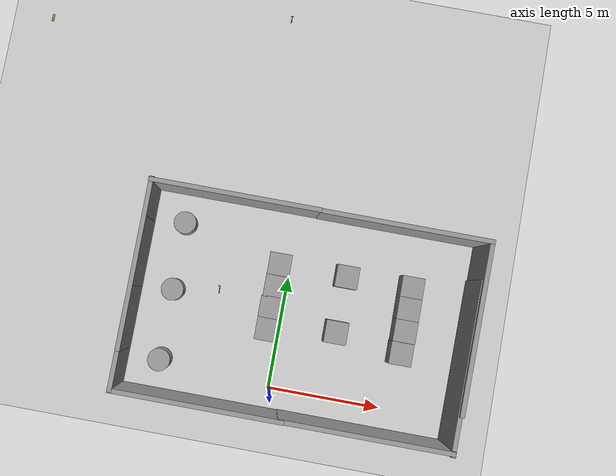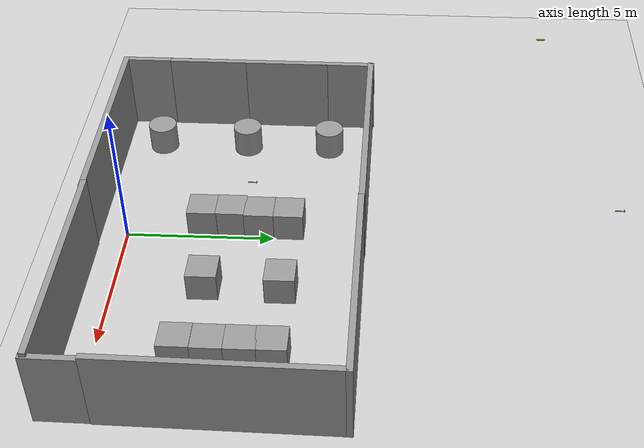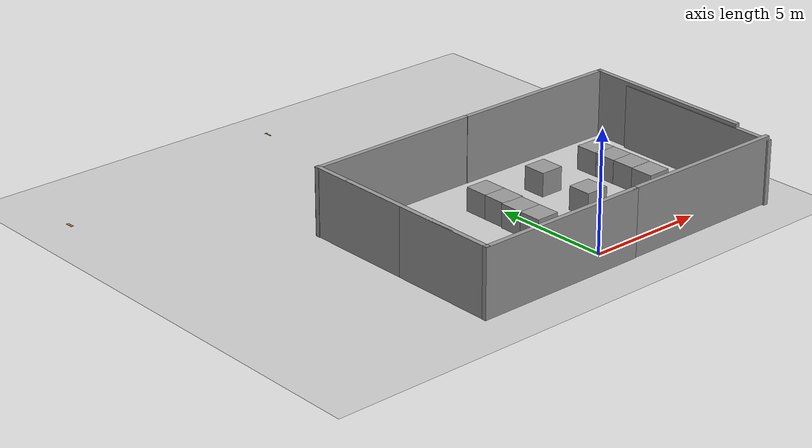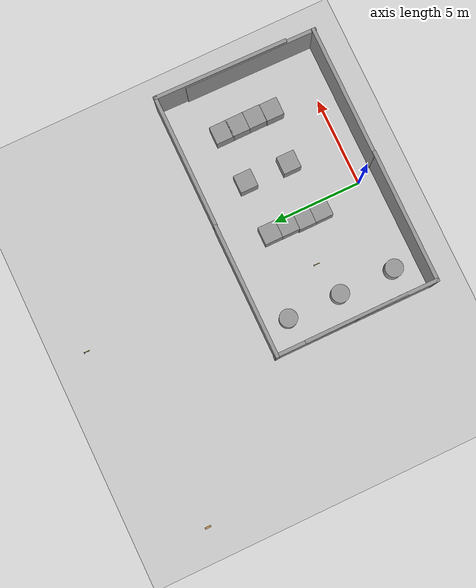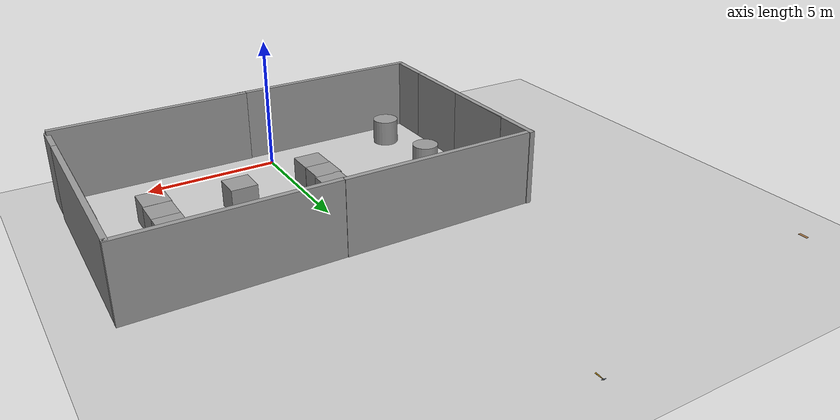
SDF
<sdf version="1.6">
 <world name="default">
  <light name="sun" type="directional">
   <pose>0 0 10 0 -0 0</pose>
   <diffuse>0.8 0.8 0.8 1</diffuse>
   <specular>0.1 0.1 0.1 1</specular>
   <attenuation>
    <range>1000</range>
    <constant>0.9</constant>
    <linear>0.01</linear>
    <quadratic>0.001</quadratic>
   </attenuation>
   <direction>-0.5 0.5 -1</direction>
  </light>
  <model name="ground_plane">
   <static>1</static>
   <link name="link">
    <collision name="collision">
     <geometry><plane><normal>0 0 1</normal><size>100 100</size></plane></geometry>
     <surface><friction><ode><mu>100</mu><mu2>50</mu2></ode></friction></surface>
    </collision>
    <visual name="visual">
     <cast_shadows>0</cast_shadows>
     <geometry><plane><normal>0 0 1</normal><size>100 100</size></plane></geometry>
     <material>
      <script><uri>file://media/materials/scripts/gazebo.material</uri><name>Gazebo/Grey</name></script>
     </material>
    </visual>
   </link>
  </model>
  <gravity>0 0 -9.8</gravity>
  <magnetic_field>6e-06 2.3e-05 -4.2e-05</magnetic_field>
  <atmosphere type="adiabatic"/>
  <physics name="default_physics" default="0" type="ode">
   <max_step_size>0.001</max_step_size>
   <real_time_factor>1</real_time_factor>
   <real_time_update_rate>1000</real_time_update_rate>
  </physics>
  <scene><ambient>0.4 0.4 0.4 1</ambient><background>0.7 0.7 0.7 1</background><shadows>1</shadows></scene>
  <spherical_coordinates>
   <surface_model>EARTH_WGS84</surface_model>
   <latitude_deg>0</latitude_deg>
   <longitude_deg>0</longitude_deg>
   <elevation>0</elevation>
   <heading_deg>0</heading_deg>
  </spherical_coordinates>
  <model name="Untitled4">
   <link name="link_1">
    <pose>5.56368 0.715031 0.235386 0 -0 0</pose>
    <inertial>
     <mass>1</mass>
     <inertia>
      <ixx>0.166667</ixx>
      <ixy>0</ixy>
      <ixz>0</ixz>
      <iyy>0.166667</iyy>
      <iyz>0</iyz>
      <izz>0.166667</izz>
     </inertia>
    </inertial>
    <visual name="visual">
     <geometry><box><size>1 1 1</size></box></geometry>
     <material>
      <lighting>1</lighting>
      <script><uri>file://media/materials/scripts/gazebo.material</uri><name>Gazebo/Grey</name></script>
      <ambient>0.3 0.3 0.3 1</ambient>
      <diffuse>0.7 0.7 0.7 1</diffuse>
      <specular>0.01 0.01 0.01 1</specular>
      <emissive>0 0 0 1</emissive>
     </material>
    </visual>
    <collision name="collision">
     <geometry><box><size>1 1 1</size></box></geometry>
     <surface>
      <friction>
       <ode><mu>1</mu><mu2>1</mu2><fdir1>0 0 0</fdir1><slip1>0</slip1><slip2>0</slip2></ode>
       <torsional>
        <coefficient>1</coefficient>
        <patch_radius>0</patch_radius>
        <surface_radius>0</surface_radius>
        <use_patch_radius>1</use_patch_radius>
        <ode><slip>0</slip></ode>
       </torsional>
      </friction>
      <bounce><restitution_coefficient>0</restitution_coefficient><threshold>1e+06</threshold></bounce>
      <contact>
       <collide_without_contact>0</collide_without_contact>
       <collide_without_contact_bitmask>1</collide_without_contact_bitmask>
       <collide_bitmask>1</collide_bitmask>
       <ode>
        <soft_cfm>0</soft_cfm>
        <soft_erp>0.2</soft_erp>
        <kp>1e+13</kp>
        <kd>1</kd>
        <max_vel>0.01</max_vel>
        <min_depth>0</min_depth>
       </ode>
       <bullet>
        <split_impulse>1</split_impulse>
        <split_impulse_penetration_threshold>-0.01</split_impulse_penetration_threshold>
        <soft_cfm>0</soft_cfm>
        <soft_erp>0.2</soft_erp>
        <kp>1e+13</kp>
        <kd>1</kd>
       </bullet>
      </contact>
     </surface>
    </collision>
   </link>
   <link name="link_2">
    <pose>5.5694 -0.224782 0.235386 0 -0 0</pose>
    <inertial>
     <mass>1</mass>
     <inertia>
      <ixx>0.166667</ixx>
      <ixy>0</ixy>
      <ixz>0</ixz>
      <iyy>0.166667</iyy>
      <iyz>0</iyz>
      <izz>0.166667</izz>
     </inertia>
    </inertial>
    <visual name="visual">
     <geometry><box><size>1 1 1</size></box></geometry>
     <material>
      <lighting>1</lighting>
      <script><uri>file://media/materials/scripts/gazebo.material</uri><name>Gazebo/Grey</name></script>
      <ambient>0.3 0.3 0.3 1</ambient>
      <diffuse>0.7 0.7 0.7 1</diffuse>
      <specular>0.01 0.01 0.01 1</specular>
      <emissive>0 0 0 1</emissive>
     </material>
    </visual>
    <collision name="collision">
     <geometry><box><size>1 1 1</size></box></geometry>
     <surface>
      <friction>
       <ode><mu>1</mu><mu2>1</mu2><fdir1>0 0 0</fdir1><slip1>0</slip1><slip2>0</slip2></ode>
       <torsional>
        <coefficient>1</coefficient>
        <patch_radius>0</patch_radius>
        <surface_radius>0</surface_radius>
        <use_patch_radius>1</use_patch_radius>
        <ode><slip>0</slip></ode>
       </torsional>
      </friction>
      <bounce><restitution_coefficient>0</restitution_coefficient><threshold>1e+06</threshold></bounce>
      <contact>
       <collide_without_contact>0</collide_without_contact>
       <collide_without_contact_bitmask>1</collide_without_contact_bitmask>
       <collide_bitmask>1</collide_bitmask>
       <ode>
        <soft_cfm>0</soft_cfm>
        <soft_erp>0.2</soft_erp>
        <kp>1e+13</kp>
        <kd>1</kd>
        <max_vel>0.01</max_vel>
        <min_depth>0</min_depth>
       </ode>
       <bullet>
        <split_impulse>1</split_impulse>
        <split_impulse_penetration_threshold>-0.01</split_impulse_penetration_threshold>
        <soft_cfm>0</soft_cfm>
        <soft_erp>0.2</soft_erp>
        <kp>1e+13</kp>
        <kd>1</kd>
       </bullet>
      </contact>
     </surface>
    </collision>
   </link>
   <link name="link_3">
    <pose>5.57303 -1.21739 0.235386 0 -0 0</pose>
    <inertial>
     <mass>1</mass>
     <inertia>
      <ixx>0.166667</ixx>
      <ixy>0</ixy>
      <ixz>0</ixz>
      <iyy>0.166667</iyy>
      <iyz>0</iyz>
      <izz>0.166667</izz>
     </inertia>
    </inertial>
    <visual name="visual">
     <geometry><box><size>1 1 1</size></box></geometry>
     <material>
      <lighting>1</lighting>
      <script><uri>file://media/materials/scripts/gazebo.material</uri><name>Gazebo/Grey</name></script>
      <ambient>0.3 0.3 0.3 1</ambient>
      <diffuse>0.7 0.7 0.7 1</diffuse>
      <specular>0.01 0.01 0.01 1</specular>
      <emissive>0 0 0 1</emissive>
     </material>
    </visual>
    <collision name="collision">
     <geometry><box><size>1 1 1</size></box></geometry>
     <surface>
      <friction>
       <ode><mu>1</mu><mu2>1</mu2><fdir1>0 0 0</fdir1><slip1>0</slip1><slip2>0</slip2></ode>
       <torsional>
        <coefficient>1</coefficient>
        <patch_radius>0</patch_radius>
        <surface_radius>0</surface_radius>
        <use_patch_radius>1</use_patch_radius>
        <ode><slip>0</slip></ode>
       </torsional>
      </friction>
      <bounce><restitution_coefficient>0</restitution_coefficient><threshold>1e+06</threshold></bounce>
      <contact>
       <collide_without_contact>0</collide_without_contact>
       <collide_without_contact_bitmask>1</collide_without_contact_bitmask>
       <collide_bitmask>1</collide_bitmask>
       <ode>
        <soft_cfm>0</soft_cfm>
        <soft_erp>0.2</soft_erp>
        <kp>1e+13</kp>
        <kd>1</kd>
        <max_vel>0.01</max_vel>
        <min_depth>0</min_depth>
       </ode>
       <bullet>
        <split_impulse>1</split_impulse>
        <split_impulse_penetration_threshold>-0.01</split_impulse_penetration_threshold>
        <soft_cfm>0</soft_cfm>
        <soft_erp>0.2</soft_erp>
        <kp>1e+13</kp>
        <kd>1</kd>
       </bullet>
      </contact>
     </surface>
    </collision>
   </link>
   <link name="link_4">
    <pose>5.55395 -2.22258 0.235386 0 -0 0</pose>
    <inertial>
     <mass>1</mass>
     <inertia>
      <ixx>0.166667</ixx>
      <ixy>0</ixy>
      <ixz>0</ixz>
      <iyy>0.166667</iyy>
      <iyz>0</iyz>
      <izz>0.166667</izz>
     </inertia>
    </inertial>
    <visual name="visual">
     <geometry><box><size>1 1 1</size></box></geometry>
     <material>
      <lighting>1</lighting>
      <script><uri>file://media/materials/scripts/gazebo.material</uri><name>Gazebo/Grey</name></script>
      <ambient>0.3 0.3 0.3 1</ambient>
      <diffuse>0.7 0.7 0.7 1</diffuse>
      <specular>0.01 0.01 0.01 1</specular>
      <emissive>0 0 0 1</emissive>
     </material>
    </visual>
    <collision name="collision">
     <geometry><box><size>1 1 1</size></box></geometry>
     <surface>
      <friction>
       <ode><mu>1</mu><mu2>1</mu2><fdir1>0 0 0</fdir1><slip1>0</slip1><slip2>0</slip2></ode>
       <torsional>
        <coefficient>1</coefficient>
        <patch_radius>0</patch_radius>
        <surface_radius>0</surface_radius>
        <use_patch_radius>1</use_patch_radius>
        <ode><slip>0</slip></ode>
       </torsional>
      </friction>
      <bounce><restitution_coefficient>0</restitution_coefficient><threshold>1e+06</threshold></bounce>
      <contact>
       <collide_without_contact>0</collide_without_contact>
       <collide_without_contact_bitmask>1</collide_without_contact_bitmask>
       <collide_bitmask>1</collide_bitmask>
       <ode>
        <soft_cfm>0</soft_cfm>
        <soft_erp>0.2</soft_erp>
        <kp>1e+13</kp>
        <kd>1</kd>
        <max_vel>0.01</max_vel>
        <min_depth>0</min_depth>
       </ode>
       <bullet>
        <split_impulse>1</split_impulse>
        <split_impulse_penetration_threshold>-0.01</split_impulse_penetration_threshold>
        <soft_cfm>0</soft_cfm>
        <soft_erp>0.2</soft_erp>
        <kp>1e+13</kp>
        <kd>1</kd>
       </bullet>
      </contact>
     </surface>
    </collision>
   </link>
   <link name="link_4_clone">
    <pose>-0.408609 0.691981 0.235386 0 -0 0</pose>
    <inertial>
     <mass>1</mass>
     <inertia>
      <ixx>0.166667</ixx>
      <ixy>0</ixy>
      <ixz>0</ixz>
      <iyy>0.166667</iyy>
      <iyz>0</iyz>
      <izz>0.166667</izz>
     </inertia>
    </inertial>
    <visual name="visual">
     <geometry><box><size>1 1 1</size></box></geometry>
     <material>
      <lighting>1</lighting>
      <script><uri>file://media/materials/scripts/gazebo.material</uri><name>Gazebo/Grey</name></script>
      <ambient>0.3 0.3 0.3 1</ambient>
      <diffuse>0.7 0.7 0.7 1</diffuse>
      <specular>0.01 0.01 0.01 1</specular>
      <emissive>0 0 0 1</emissive>
      <shader type="pixel"/>
     </material>
    </visual>
    <collision name="collision">
     <geometry><box><size>1 1 1</size></box></geometry>
     <surface>
      <friction>
       <ode><mu>1</mu><mu2>1</mu2><fdir1>0 0 0</fdir1><slip1>0</slip1><slip2>0</slip2></ode>
       <torsional>
        <coefficient>1</coefficient>
        <patch_radius>0</patch_radius>
        <surface_radius>0</surface_radius>
        <use_patch_radius>1</use_patch_radius>
        <ode><slip>0</slip></ode>
       </torsional>
      </friction>
      <bounce><restitution_coefficient>0</restitution_coefficient><threshold>1e+06</threshold></bounce>
      <contact>
       <collide_without_contact>0</collide_without_contact>
       <collide_without_contact_bitmask>1</collide_without_contact_bitmask>
       <collide_bitmask>1</collide_bitmask>
       <ode>
        <soft_cfm>0</soft_cfm>
        <soft_erp>0.2</soft_erp>
        <kp>1e+13</kp>
        <kd>1</kd>
        <max_vel>0.01</max_vel>
        <min_depth>0</min_depth>
       </ode>
       <bullet>
        <split_impulse>1</split_impulse>
        <split_impulse_penetration_threshold>-0.01</split_impulse_penetration_threshold>
        <soft_cfm>0</soft_cfm>
        <soft_erp>0.2</soft_erp>
        <kp>1e+13</kp>
        <kd>1</kd>
       </bullet>
      </contact>
     </surface>
    </collision>
   </link>
   <link name="link_4_clone_0">
    <pose>-0.412688 -0.309365 0.235386 0 -0 0</pose>
    <inertial>
     <mass>1</mass>
     <inertia>
      <ixx>0.166667</ixx>
      <ixy>0</ixy>
      <ixz>0</ixz>
      <iyy>0.166667</iyy>
      <iyz>0</iyz>
      <izz>0.166667</izz>
     </inertia>
    </inertial>
    <visual name="visual">
     <geometry><box><size>1 1 1</size></box></geometry>
     <material>
      <lighting>1</lighting>
      <script><uri>file://media/materials/scripts/gazebo.material</uri><name>Gazebo/Grey</name></script>
      <ambient>0.3 0.3 0.3 1</ambient>
      <diffuse>0.7 0.7 0.7 1</diffuse>
      <specular>0.01 0.01 0.01 1</specular>
      <emissive>0 0 0 1</emissive>
      <shader type="pixel"/>
     </material>
    </visual>
    <collision name="collision">
     <geometry><box><size>1 1 1</size></box></geometry>
     <surface>
      <friction>
       <ode><mu>1</mu><mu2>1</mu2><fdir1>0 0 0</fdir1><slip1>0</slip1><slip2>0</slip2></ode>
       <torsional>
        <coefficient>1</coefficient>
        <patch_radius>0</patch_radius>
        <surface_radius>0</surface_radius>
        <use_patch_radius>1</use_patch_radius>
        <ode><slip>0</slip></ode>
       </torsional>
      </friction>
      <bounce><restitution_coefficient>0</restitution_coefficient><threshold>1e+06</threshold></bounce>
      <contact>
       <collide_without_contact>0</collide_without_contact>
       <collide_without_contact_bitmask>1</collide_without_contact_bitmask>
       <collide_bitmask>1</collide_bitmask>
       <ode>
        <soft_cfm>0</soft_cfm>
        <soft_erp>0.2</soft_erp>
        <kp>1e+13</kp>
        <kd>1</kd>
        <max_vel>0.01</max_vel>
        <min_depth>0</min_depth>
       </ode>
       <bullet>
        <split_impulse>1</split_impulse>
        <split_impulse_penetration_threshold>-0.01</split_impulse_penetration_threshold>
        <soft_cfm>0</soft_cfm>
        <soft_erp>0.2</soft_erp>
        <kp>1e+13</kp>
        <kd>1</kd>
       </bullet>
      </contact>
     </surface>
    </collision>
   </link>
   <link name="link_4_clone_1">
    <pose>-0.466323 -1.27048 0.235386 0 -0 0</pose>
    <inertial>
     <mass>1</mass>
     <inertia>
      <ixx>0.166667</ixx>
      <ixy>0</ixy>
      <ixz>0</ixz>
      <iyy>0.166667</iyy>
      <iyz>0</iyz>
      <izz>0.166667</izz>
     </inertia>
    </inertial>
    <visual name="visual">
     <geometry><box><size>1 1 1</size></box></geometry>
     <material>
      <lighting>1</lighting>
      <script><uri>file://media/materials/scripts/gazebo.material</uri><name>Gazebo/Grey</name></script>
      <ambient>0.3 0.3 0.3 1</ambient>
      <diffuse>0.7 0.7 0.7 1</diffuse>
      <specular>0.01 0.01 0.01 1</specular>
      <emissive>0 0 0 1</emissive>
      <shader type="pixel"/>
     </material>
    </visual>
    <collision name="collision">
     <geometry><box><size>1 1 1</size></box></geometry>
     <surface>
      <friction>
       <ode><mu>1</mu><mu2>1</mu2><fdir1>0 0 0</fdir1><slip1>0</slip1><slip2>0</slip2></ode>
       <torsional>
        <coefficient>1</coefficient>
        <patch_radius>0</patch_radius>
        <surface_radius>0</surface_radius>
        <use_patch_radius>1</use_patch_radius>
        <ode><slip>0</slip></ode>
       </torsional>
      </friction>
      <bounce><restitution_coefficient>0</restitution_coefficient><threshold>1e+06</threshold></bounce>
      <contact>
       <collide_without_contact>0</collide_without_contact>
       <collide_without_contact_bitmask>1</collide_without_contact_bitmask>
       <collide_bitmask>1</collide_bitmask>
       <ode>
        <soft_cfm>0</soft_cfm>
        <soft_erp>0.2</soft_erp>
        <kp>1e+13</kp>
        <kd>1</kd>
        <max_vel>0.01</max_vel>
        <min_depth>0</min_depth>
       </ode>
       <bullet>
        <split_impulse>1</split_impulse>
        <split_impulse_penetration_threshold>-0.01</split_impulse_penetration_threshold>
        <soft_cfm>0</soft_cfm>
        <soft_erp>0.2</soft_erp>
        <kp>1e+13</kp>
        <kd>1</kd>
       </bullet>
      </contact>
     </surface>
    </collision>
   </link>
   <link name="link_4_clone_2">
    <pose>-0.458533 -2.23347 0.235386 0 -0 0</pose>
    <inertial>
     <mass>1</mass>
     <inertia>
      <ixx>0.166667</ixx>
      <ixy>0</ixy>
      <ixz>0</ixz>
      <iyy>0.166667</iyy>
      <iyz>0</iyz>
      <izz>0.166667</izz>
     </inertia>
    </inertial>
    <visual name="visual">
     <geometry><box><size>1 1 1</size></box></geometry>
     <material>
      <lighting>1</lighting>
      <script><uri>file://media/materials/scripts/gazebo.material</uri><name>Gazebo/Grey</name></script>
      <ambient>0.3 0.3 0.3 1</ambient>
      <diffuse>0.7 0.7 0.7 1</diffuse>
      <specular>0.01 0.01 0.01 1</specular>
      <emissive>0 0 0 1</emissive>
      <shader type="pixel"/>
     </material>
    </visual>
    <collision name="collision">
     <geometry><box><size>1 1 1</size></box></geometry>
     <surface>
      <friction>
       <ode><mu>1</mu><mu2>1</mu2><fdir1>0 0 0</fdir1><slip1>0</slip1><slip2>0</slip2></ode>
       <torsional>
        <coefficient>1</coefficient>
        <patch_radius>0</patch_radius>
        <surface_radius>0</surface_radius>
        <use_patch_radius>1</use_patch_radius>
        <ode><slip>0</slip></ode>
       </torsional>
      </friction>
      <bounce><restitution_coefficient>0</restitution_coefficient><threshold>1e+06</threshold></bounce>
      <contact>
       <collide_without_contact>0</collide_without_contact>
       <collide_without_contact_bitmask>1</collide_without_contact_bitmask>
       <collide_bitmask>1</collide_bitmask>
       <ode>
        <soft_cfm>0</soft_cfm>
        <soft_erp>0.2</soft_erp>
        <kp>1e+13</kp>
        <kd>1</kd>
        <max_vel>0.01</max_vel>
        <min_depth>0</min_depth>
       </ode>
       <bullet>
        <split_impulse>1</split_impulse>
        <split_impulse_penetration_threshold>-0.01</split_impulse_penetration_threshold>
        <soft_cfm>0</soft_cfm>
        <soft_erp>0.2</soft_erp>
        <kp>1e+13</kp>
        <kd>1</kd>
       </bullet>
      </contact>
     </surface>
    </collision>
   </link>
   <link name="link_5">
    <pose>-4.90021 -4.3868 0.235386 0 -0 0</pose>
    <inertial>
     <mass>1</mass>
     <inertia><ixx>0.145833</ixx><ixy>0</ixy><ixz>0</ixz><iyy>0.145833</iyy><iyz>0</iyz><izz>0.125</izz></inertia>
    </inertial>
    <visual name="visual">
     <geometry><cylinder><radius>0.5</radius><length>1</length></cylinder></geometry>
     <material>
      <lighting>1</lighting>
      <script><uri>file://media/materials/scripts/gazebo.material</uri><name>Gazebo/Grey</name></script>
      <ambient>0.3 0.3 0.3 1</ambient>
      <diffuse>0.7 0.7 0.7 1</diffuse>
      <specular>0.01 0.01 0.01 1</specular>
      <emissive>0 0 0 1</emissive>
     </material>
    </visual>
    <collision name="collision">
     <geometry><cylinder><radius>0.5</radius><length>1</length></cylinder></geometry>
     <surface>
      <friction>
       <ode><mu>1</mu><mu2>1</mu2><fdir1>0 0 0</fdir1><slip1>0</slip1><slip2>0</slip2></ode>
       <torsional>
        <coefficient>1</coefficient>
        <patch_radius>0</patch_radius>
        <surface_radius>0</surface_radius>
        <use_patch_radius>1</use_patch_radius>
        <ode><slip>0</slip></ode>
       </torsional>
      </friction>
      <bounce><restitution_coefficient>0</restitution_coefficient><threshold>1e+06</threshold></bounce>
      <contact>
       <collide_without_contact>0</collide_without_contact>
       <collide_without_contact_bitmask>1</collide_without_contact_bitmask>
       <collide_bitmask>1</collide_bitmask>
       <ode>
        <soft_cfm>0</soft_cfm>
        <soft_erp>0.2</soft_erp>
        <kp>1e+13</kp>
        <kd>1</kd>
        <max_vel>0.01</max_vel>
        <min_depth>0</min_depth>
       </ode>
       <bullet>
        <split_impulse>1</split_impulse>
        <split_impulse_penetration_threshold>-0.01</split_impulse_penetration_threshold>
        <soft_cfm>0</soft_cfm>
        <soft_erp>0.2</soft_erp>
        <kp>1e+13</kp>
        <kd>1</kd>
       </bullet>
      </contact>
     </surface>
    </collision>
   </link>
   <link name="link_6">
    <pose>-4.90021 -1.24553 0.235386 0 -0 0</pose>
    <inertial>
     <mass>1</mass>
     <inertia><ixx>0.145833</ixx><ixy>0</ixy><ixz>0</ixz><iyy>0.145833</iyy><iyz>0</iyz><izz>0.125</izz></inertia>
    </inertial>
    <visual name="visual">
     <geometry><cylinder><radius>0.5</radius><length>1</length></cylinder></geometry>
     <material>
      <lighting>1</lighting>
      <script><uri>file://media/materials/scripts/gazebo.material</uri><name>Gazebo/Grey</name></script>
      <ambient>0.3 0.3 0.3 1</ambient>
      <diffuse>0.7 0.7 0.7 1</diffuse>
      <specular>0.01 0.01 0.01 1</specular>
      <emissive>0 0 0 1</emissive>
     </material>
    </visual>
    <collision name="collision">
     <geometry><cylinder><radius>0.5</radius><length>1</length></cylinder></geometry>
     <surface>
      <friction>
       <ode><mu>1</mu><mu2>1</mu2><fdir1>0 0 0</fdir1><slip1>0</slip1><slip2>0</slip2></ode>
       <torsional>
        <coefficient>1</coefficient>
        <patch_radius>0</patch_radius>
        <surface_radius>0</surface_radius>
        <use_patch_radius>1</use_patch_radius>
        <ode><slip>0</slip></ode>
       </torsional>
      </friction>
      <bounce><restitution_coefficient>0</restitution_coefficient><threshold>1e+06</threshold></bounce>
      <contact>
       <collide_without_contact>0</collide_without_contact>
       <collide_without_contact_bitmask>1</collide_without_contact_bitmask>
       <collide_bitmask>1</collide_bitmask>
       <ode>
        <soft_cfm>0</soft_cfm>
        <soft_erp>0.2</soft_erp>
        <kp>1e+13</kp>
        <kd>1</kd>
        <max_vel>0.01</max_vel>
        <min_depth>0</min_depth>
       </ode>
       <bullet>
        <split_impulse>1</split_impulse>
        <split_impulse_penetration_threshold>-0.01</split_impulse_penetration_threshold>
        <soft_cfm>0</soft_cfm>
        <soft_erp>0.2</soft_erp>
        <kp>1e+13</kp>
        <kd>1</kd>
       </bullet>
      </contact>
     </surface>
    </collision>
   </link>
   <link name="link_7">
    <pose>-4.90021 1.76209 0.235386 0 -0 0</pose>
    <inertial>
     <mass>1</mass>
     <inertia><ixx>0.145833</ixx><ixy>0</ixy><ixz>0</ixz><iyy>0.145833</iyy><iyz>0</iyz><izz>0.125</izz></inertia>
    </inertial>
    <visual name="visual">
     <geometry><cylinder><radius>0.5</radius><length>1</length></cylinder></geometry>
     <material>
      <lighting>1</lighting>
      <script><uri>file://media/materials/scripts/gazebo.material</uri><name>Gazebo/Grey</name></script>
      <ambient>0.3 0.3 0.3 1</ambient>
      <diffuse>0.7 0.7 0.7 1</diffuse>
      <specular>0.01 0.01 0.01 1</specular>
      <emissive>0 0 0 1</emissive>
     </material>
    </visual>
    <collision name="collision">
     <geometry><cylinder><radius>0.5</radius><length>1</length></cylinder></geometry>
     <surface>
      <friction>
       <ode><mu>1</mu><mu2>1</mu2><fdir1>0 0 0</fdir1><slip1>0</slip1><slip2>0</slip2></ode>
       <torsional>
        <coefficient>1</coefficient>
        <patch_radius>0</patch_radius>
        <surface_radius>0</surface_radius>
        <use_patch_radius>1</use_patch_radius>
        <ode><slip>0</slip></ode>
       </torsional>
      </friction>
      <bounce><restitution_coefficient>0</restitution_coefficient><threshold>1e+06</threshold></bounce>
      <contact>
       <collide_without_contact>0</collide_without_contact>
       <collide_without_contact_bitmask>1</collide_without_contact_bitmask>
       <collide_bitmask>1</collide_bitmask>
       <ode>
        <soft_cfm>0</soft_cfm>
        <soft_erp>0.2</soft_erp>
        <kp>1e+13</kp>
        <kd>1</kd>
        <max_vel>0.01</max_vel>
        <min_depth>0</min_depth>
       </ode>
       <bullet>
        <split_impulse>1</split_impulse>
        <split_impulse_penetration_threshold>-0.01</split_impulse_penetration_threshold>
        <soft_cfm>0</soft_cfm>
        <soft_erp>0.2</soft_erp>
        <kp>1e+13</kp>
        <kd>1</kd>
       </bullet>
      </contact>
     </surface>
    </collision>
   </link>
   <link name="link_8">
    <pose>2.57714 -1.81245 0.235386 0 -0 0</pose>
    <inertial>
     <mass>1</mass>
     <inertia>
      <ixx>0.166667</ixx>
      <ixy>0</ixy>
      <ixz>0</ixz>
      <iyy>0.166667</iyy>
      <iyz>0</iyz>
      <izz>0.166667</izz>
     </inertia>
    </inertial>
    <visual name="visual">
     <geometry><box><size>1 1 1</size></box></geometry>
     <material>
      <lighting>1</lighting>
      <script><uri>file://media/materials/scripts/gazebo.material</uri><name>Gazebo/Grey</name></script>
      <ambient>0.3 0.3 0.3 1</ambient>
      <diffuse>0.7 0.7 0.7 1</diffuse>
      <specular>0.01 0.01 0.01 1</specular>
      <emissive>0 0 0 1</emissive>
     </material>
    </visual>
    <collision name="collision">
     <geometry><box><size>1 1 1</size></box></geometry>
     <surface>
      <friction>
       <ode><mu>1</mu><mu2>1</mu2><fdir1>0 0 0</fdir1><slip1>0</slip1><slip2>0</slip2></ode>
       <torsional>
        <coefficient>1</coefficient>
        <patch_radius>0</patch_radius>
        <surface_radius>0</surface_radius>
        <use_patch_radius>1</use_patch_radius>
        <ode><slip>0</slip></ode>
       </torsional>
      </friction>
      <bounce><restitution_coefficient>0</restitution_coefficient><threshold>1e+06</threshold></bounce>
      <contact>
       <collide_without_contact>0</collide_without_contact>
       <collide_without_contact_bitmask>1</collide_without_contact_bitmask>
       <collide_bitmask>1</collide_bitmask>
       <ode>
        <soft_cfm>0</soft_cfm>
        <soft_erp>0.2</soft_erp>
        <kp>1e+13</kp>
        <kd>1</kd>
        <max_vel>0.01</max_vel>
        <min_depth>0</min_depth>
       </ode>
       <bullet>
        <split_impulse>1</split_impulse>
        <split_impulse_penetration_threshold>-0.01</split_impulse_penetration_threshold>
        <soft_cfm>0</soft_cfm>
        <soft_erp>0.2</soft_erp>
        <kp>1e+13</kp>
        <kd>1</kd>
       </bullet>
      </contact>
     </surface>
    </collision>
   </link>
   <link name="link_9">
    <pose>2.6402 0.683528 0.235386 0 -0 0</pose>
    <inertial>
     <mass>1</mass>
     <inertia>
      <ixx>0.166667</ixx>
      <ixy>0</ixy>
      <ixz>0</ixz>
      <iyy>0.166667</iyy>
      <iyz>0</iyz>
      <izz>0.166667</izz>
     </inertia>
    </inertial>
    <visual name="visual">
     <geometry><box><size>1 1 1</size></box></geometry>
     <material>
      <lighting>1</lighting>
      <script><uri>file://media/materials/scripts/gazebo.material</uri><name>Gazebo/Grey</name></script>
      <ambient>0.3 0.3 0.3 1</ambient>
      <diffuse>0.7 0.7 0.7 1</diffuse>
      <specular>0.01 0.01 0.01 1</specular>
      <emissive>0 0 0 1</emissive>
     </material>
    </visual>
    <collision name="collision">
     <geometry><box><size>1 1 1</size></box></geometry>
     <surface>
      <friction>
       <ode><mu>1</mu><mu2>1</mu2><fdir1>0 0 0</fdir1><slip1>0</slip1><slip2>0</slip2></ode>
       <torsional>
        <coefficient>1</coefficient>
        <patch_radius>0</patch_radius>
        <surface_radius>0</surface_radius>
        <use_patch_radius>1</use_patch_radius>
        <ode><slip>0</slip></ode>
       </torsional>
      </friction>
      <bounce><restitution_coefficient>0</restitution_coefficient><threshold>1e+06</threshold></bounce>
      <contact>
       <collide_without_contact>0</collide_without_contact>
       <collide_without_contact_bitmask>1</collide_without_contact_bitmask>
       <collide_bitmask>1</collide_bitmask>
       <ode>
        <soft_cfm>0</soft_cfm>
        <soft_erp>0.2</soft_erp>
        <kp>1e+13</kp>
        <kd>1</kd>
        <max_vel>0.01</max_vel>
        <min_depth>0</min_depth>
       </ode>
       <bullet>
        <split_impulse>1</split_impulse>
        <split_impulse_penetration_threshold>-0.01</split_impulse_penetration_threshold>
        <soft_cfm>0</soft_cfm>
        <soft_erp>0.2</soft_erp>
        <kp>1e+13</kp>
        <kd>1</kd>
       </bullet>
      </contact>
     </surface>
    </collision>
   </link>
   <model name="grey_wall">
    <static>1</static>
    <link name="link">
     <pose>0 0 1.4 0 -0 0</pose>
     <collision name="collision"><geometry><box><size>7.5 0.2 2.8</size></box></geometry></collision>
     <visual name="visual">
      <cast_shadows>0</cast_shadows>
      <geometry><box><size>7.5 0.2 2.8</size></box></geometry>
      <material>
       <script>
        <uri>model://grey_wall/materials/scripts</uri>
        <uri>model://grey_wall/materials/textures</uri>
        <name>vrc/grey_wall</name>
       </script>
      </material>
     </visual>
    </link>
    <pose>-2.84041 -5.81538 -0.264614 0 -0 0</pose>
   </model>
   <model name="grey_wall_0">
    <static>1</static>
    <link name="link">
     <pose>0 0 1.4 0 -0 0</pose>
     <collision name="collision"><geometry><box><size>7.5 0.2 2.8</size></box></geometry></collision>
     <visual name="visual">
      <cast_shadows>0</cast_shadows>
      <geometry><box><size>7.5 0.2 2.8</size></box></geometry>
      <material>
       <script>
        <uri>model://grey_wall/materials/scripts</uri>
        <uri>model://grey_wall/materials/textures</uri>
        <name>vrc/grey_wall</name>
       </script>
      </material>
     </visual>
    </link>
    <pose>4.3684 -5.79147 -0.264614 0 -0 0</pose>
   </model>
   <model name="grey_wall_1">
    <static>1</static>
    <link name="link">
     <pose>0 0 1.4 0 -0 0</pose>
     <collision name="collision"><geometry><box><size>7.5 0.2 2.8</size></box></geometry></collision>
     <visual name="visual">
      <cast_shadows>0</cast_shadows>
      <geometry><box><size>7.5 0.2 2.8</size></box></geometry>
      <material>
       <script>
        <uri>model://grey_wall/materials/scripts</uri>
        <uri>model://grey_wall/materials/textures</uri>
        <name>vrc/grey_wall</name>
       </script>
      </material>
     </visual>
    </link>
    <pose>-2.83368 3.20584 -0.264614 0 -0 0</pose>
   </model>
   <model name="grey_wall_2">
    <static>1</static>
    <link name="link">
     <pose>0 0 1.4 0 -0 0</pose>
     <collision name="collision"><geometry><box><size>7.5 0.2 2.8</size></box></geometry></collision>
     <visual name="visual">
      <cast_shadows>0</cast_shadows>
      <geometry><box><size>7.5 0.2 2.8</size></box></geometry>
      <material>
       <script>
        <uri>model://grey_wall/materials/scripts</uri>
        <uri>model://grey_wall/materials/textures</uri>
        <name>vrc/grey_wall</name>
       </script>
      </material>
     </visual>
    </link>
    <pose>4.60801 3.18755 -0.264614 0 -0 0</pose>
   </model>
   <model name="grey_wall_3">
    <static>1</static>
    <link name="link">
     <pose>0 0 1.4 0 -0 0</pose>
     <collision name="collision"><geometry><box><size>7.5 0.2 2.8</size></box></geometry></collision>
     <visual name="visual">
      <cast_shadows>0</cast_shadows>
      <geometry><box><size>7.5 0.2 2.8</size></box></geometry>
      <material>
       <script>
        <uri>model://grey_wall/materials/scripts</uri>
        <uri>model://grey_wall/materials/textures</uri>
        <name>vrc/grey_wall</name>
       </script>
      </material>
     </visual>
    </link>
    <pose>-6.47363 -2.12792 -0.264614 0 -0 1.56786</pose>
   </model>
   <model name="grey_wall_4">
    <static>1</static>
    <link name="link">
     <pose>0 0 1.4 0 -0 0</pose>
     <collision name="collision"><geometry><box><size>7.5 0.2 2.8</size></box></geometry></collision>
     <visual name="visual">
      <cast_shadows>0</cast_shadows>
      <geometry><box><size>7.5 0.2 2.8</size></box></geometry>
      <material>
       <script>
        <uri>model://grey_wall/materials/scripts</uri>
        <uri>model://grey_wall/materials/textures</uri>
        <name>vrc/grey_wall</name>
       </script>
      </material>
     </visual>
    </link>
    <pose>8.1188 -2.21464 -0.413882 0 0 -1.58516</pose>
   </model>
   <model name="grey_wall_5">
    <static>1</static>
    <link name="link">
     <pose>0 0 1.4 0 -0 0</pose>
     <collision name="collision"><geometry><box><size>7.5 0.2 2.8</size></box></geometry></collision>
     <visual name="visual">
      <cast_shadows>0</cast_shadows>
      <geometry><box><size>7.5 0.2 2.8</size></box></geometry>
      <material>
       <script>
        <uri>model://grey_wall/materials/scripts</uri>
        <uri>model://grey_wall/materials/textures</uri>
        <name>vrc/grey_wall</name>
       </script>
      </material>
     </visual>
    </link>
    <pose>-6.47048 -0.412986 -0.264614 0 -0 1.56981</pose>
   </model>
   <model name="grey_wall_6">
    <static>1</static>
    <link name="link">
     <pose>0 0 1.4 0 -0 0</pose>
     <collision name="collision"><geometry><box><size>7.5 0.2 2.8</size></box></geometry></collision>
     <visual name="visual">
      <cast_shadows>0</cast_shadows>
      <geometry><box><size>7.5 0.2 2.8</size></box></geometry>
      <material>
       <script>
        <uri>model://grey_wall/materials/scripts</uri>
        <uri>model://grey_wall/materials/textures</uri>
        <name>vrc/grey_wall</name>
       </script>
      </material>
     </visual>
    </link>
    <pose>8.193 -0.523436 -0.264614 0 0 -1.5869</pose>
   </model>
   <model name="hammer">
    <static>1</static>
    <link name="link">
     <collision name="collision">
      <geometry><mesh><uri>model://hammer/meshes/hammer.dae</uri></mesh></geometry>
     </collision>
     <visual name="visual"><geometry><mesh><uri>model://hammer/meshes/hammer.dae</uri></mesh></geometry></visual>
    </link>
    <pose>-2.90021 -0.812449 -0.264614 0 -0 0</pose>
   </model>
   <model name="hammer_0">
    <static>1</static>
    <link name="link">
     <collision name="collision">
      <geometry><mesh><uri>model://hammer/meshes/hammer.dae</uri></mesh></geometry>
     </collision>
     <visual name="visual"><geometry><mesh><uri>model://hammer/meshes/hammer.dae</uri></mesh></geometry></visual>
    </link>
    <pose>-1.90021 12.1876 -0.264614 0 -0 0</pose>
   </model>
   <model name="wooden_board">
    <link name="base">
     <pose>0 0 0.00523 0 -0 0</pose>
     <inertial>
      <mass>0.2765</mass>
      <inertia>
       <ixx>0.0025148</ixx>
       <ixy>0</ixy>
       <ixz>0</ixz>
       <iyy>0.00024037</iyy>
       <iyz>0</iyz>
       <izz>0.00275013</izz>
      </inertia>
     </inertial>
     <collision name="collision">
      <geometry><box><size>0.1016 0.3302 0.01046</size></box></geometry>
      <surface><contact><ode><max_vel>0.1</max_vel><min_depth>0.001</min_depth></ode></contact></surface>
     </collision>
     <visual name="visual">
      <geometry><box><size>0.1016 0.3302 0.01046</size></box></geometry>
      <material>
       <script><uri>file://media/materials/scripts/gazebo.material</uri><name>Gazebo/Wood</name></script>
      </material>
     </visual>
     <visual name="tee_nut_1">
      <pose>0 -0.116 0 0 -0 0</pose>
      <geometry><cylinder><radius>0.00635</radius><length>0.0105646</length></cylinder></geometry>
      <material>
       <script><uri>file://media/materials/scripts/gazebo.material</uri><name>Gazebo/Grey</name></script>
      </material>
     </visual>
     <visual name="tee_nut_2">
      <pose>0 -0.038 0 0 -0 0</pose>
      <geometry><cylinder><radius>0.00635</radius><length>0.0105646</length></cylinder></geometry>
      <material>
       <script><uri>file://media/materials/scripts/gazebo.material</uri><name>Gazebo/Grey</name></script>
      </material>
     </visual>
     <visual name="tee_nut_3">
      <pose>0 0.038 0 0 -0 0</pose>
      <geometry><cylinder><radius>0.00635</radius><length>0.0105646</length></cylinder></geometry>
      <material>
       <script><uri>file://media/materials/scripts/gazebo.material</uri><name>Gazebo/Grey</name></script>
      </material>
     </visual>
     <visual name="tee_nut_4">
      <pose>0 0.116 0 0 -0 0</pose>
      <geometry><cylinder><radius>0.00635</radius><length>0.0105646</length></cylinder></geometry>
      <material>
       <script><uri>file://media/materials/scripts/gazebo.material</uri><name>Gazebo/Grey</name></script>
      </material>
     </visual>
    </link>
    <pose>-12.9002 10.1876 -0.264614 0 -0 0</pose>
   </model>
   <static>0</static>
   <pose>-0.09979 4.81245 0.264614 0 -0 0</pose>
  </model>
 </world>
</sdf>
